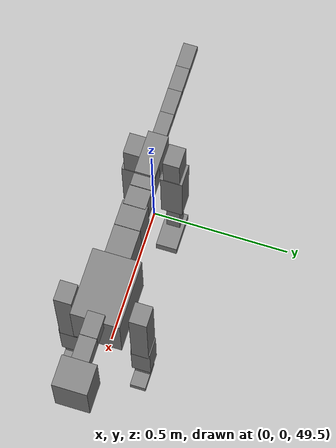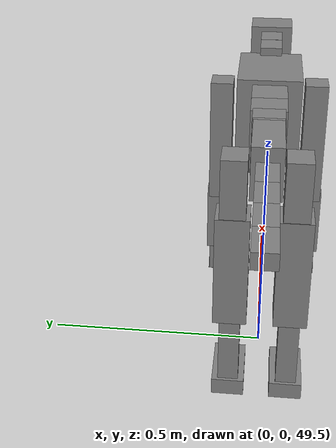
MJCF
<mujoco model="dog">

    <default>
        <joint armature="0.02" stiffness="1" damping="0.2" limited="true"/>
        <geom condim="3" friction="1 0.05 0.05" margin="0.01"/>
        <motor ctrllimited="true" ctrlrange="-1.0 1.0" forcelimited="true" gear="50"/>
    </default>

    <compiler inertiafromgeom="true" angle="radian"/>

    <option timestep="0.016" iterations="50" tolerance="1e-10" solver="Newton" jacobian="dense" cone="pyramidal"/>

    <size nconmax="20000" njmax="60000" nstack="5000000"/>
    <visual>
        <map force="0.1" zfar="30"/>
        <rgba haze="0.15 0.25 0.35 1"/>
        <quality shadowsize="2048"/>
        <global offwidth="800" offheight="800"/>
    </visual>

    <asset>
        <texture type="skybox" builtin="gradient" rgb1="0.3 0.5 0.7" rgb2="0 0 0" width="512" height="512"/>
        <texture name="texplane" type="2d" builtin="checker" rgb1=".2 .3 .4" rgb2=".1 0.15 0.2" width="512" height="512"
                 mark="cross" markrgb=".8 .8 .8"/>
        <texture name="texgeom" type="cube" builtin="flat" mark="cross" width="127" height="1278" rgb1="0.8 0.6 0.4"
                 rgb2="0.8 0.6 0.4" markrgb="1 1 1" random="0.01"/>

        <material name="matplane" reflectance="0.3" texture="texplane" texrepeat="1 1" texuniform="true"/>
        <material name="matgeom" texture="texgeom" texuniform="true" rgba="0.8 0.6 .4 1"/>
    </asset>

    <worldbody>
        <geom name="floor" pos="0 0 0" size="0 0 .25" type="plane" material="matplane" condim="3"/>

        <light directional="false" diffuse=".2 .2 .2" specular="0 0 0" pos="0 0 5" dir="0 0 -1" castshadow="false"/>
        <light mode="targetbodycom" target="torso" directional="false" diffuse=".8 .8 .8" specular="0.3 0.3 0.3"
               pos="0 0 4.0" dir="0 0 -1"/>

        <body name="root" pos="0 0 50">
            <freejoint name="root_1"/>
            <geom type="box" pos="0 0 -0.02" size="0.0774  0.0358  0.063" density="2030"/>

            <body name="spine1" pos="0.054 0 0">
                <joint name="spine1_y" axis="0 1 0" range="0 0.7" limited="true"/>
                <geom type="box" pos="0.02375 0 -0.03" size="0.04375  0.0375  0.05985" density="2030"/>

                <body name="spine2" pos="0.0612 0 0">
                    <joint name="spine2_y" axis="0 1 0" range="-0.15 0.15" limited="true"/>
                    <geom type="box" pos="0.03555  0  -0.04" size="0.04055  0.039  0.06615" density="2030"/>

                    <body name="spine3" pos="0.0730 0 0">
                        <joint name="spine3_y" axis="0 1 0" range="-0.15 0.15" limited="true"/>
                        <geom type="box" pos="0.03555  0  -0.057" size="0.04555  0.0445  0.081" density="2030"/>

                        <body name="spine4" pos="0.0780 0 0">
                            <joint name="spine4_y" axis="0 1 0" range="-0.15 0.15" limited="true"/>
                            <geom type="box" pos="0.05265  0  -0.07" size="0.05265  0.045  0.09135" density="2030"/>

                            <body name="torso" pos="0.1082 0 0">
                                <joint name="torso_y" axis="0 1 0" range="-0.15 0.15" limited="true"/>
                                <geom type="box" pos="0.11925  0  -0.085" size="0.11925  0.085  0.11745"
                                      density="2030"/>

                                <body name="neck1" pos="0.2160  0   0.0180">
                                    <joint name="neck1_y" axis="0 1 0" range="-1.2  -1" limited="true"/>
                                    <geom type="box" pos="0.0423  0  0" size="0.0423  0.03  0.036" density="2325"/>

                                    <body name="neck2" pos="0.0853  0  0">
                                        <joint name="neck2_y" axis="0 1 0" range="0.1  0" limited="true"/>
                                        <geom type="box" pos="0.0423  0  0" size="0.0423  0.03  0.036" density="2325"/>

                                        <body name="head" pos="0.0853  0  0">
                                            <joint name="head_y" axis="0 1 0" range="-0.3  -0.2" limited="true"/>
                                            <geom type="box" pos="0.0531  0  -0.055" size="0.0531  0.06  0.1044"
                                                  density="4030"/>

                                        </body>
                                    </body>
                                </body>

                                <body name="front_shoulder" pos="0.156  0   -0.0480">
                                    <joint name="front_shoulder_y" axis="0 1 0" range="-1 1.5" limited="true"/>
                                    <geom type="box" pos="0 0.13 -0.1483" size="0.0364  0.0311  0.1750" density="1158"/>
                                    <geom type="box" pos="0 -0.13 -0.1483" size="0.0364  0.0311  0.1750"
                                          density="1158"/>

                                    <body name="front_elbow" pos="0  0  -0.2967">
                                        <joint name="front_elbow_y" axis="0 1 0" range="-2 0" limited="true"/>
                                        <geom type="box" pos="0 0.13 -0.0985" size="0.0338  0.0346  0.0985"
                                              density="1081"/>
                                        <geom type="box" pos="0 -0.13 -0.0985" size="0.0338  0.0346  0.0985"
                                              density="1081"/>

                                        <body name="front_wrist" pos="0  0  -0.1970">
                                            <joint name="front_wrist_y" axis="0 1 0" range="-0.2 0" limited="true"/>
                                            <geom type="box" pos="0 0.13 -0.0348" size="0.0242  0.0269  0.0480"
                                                  density="1664"/>
                                            <geom type="box" pos="0 -0.13 -0.0348" size="0.0242  0.0269  0.0480"
                                                  density="1664"/>

                                            <body name="front_finger_end" pos="0  0  -0.0696">
                                                <joint name="front_finger_y" axis="0 1 0" range="-0.4 1"
                                                       limited="true"/>
                                                <geom type="box" pos="0.0285  0.13  0.0004"
                                                      size="0.0522  0.0285  0.0146" density="1515"/>
                                                <geom type="box" pos="0.0285  -0.13  0.0004"
                                                      size="0.0522  0.0285  0.0146" density="1515"/>

                                            </body>

                                        </body>
                                    </body>
                                </body>

                            </body>
                        </body>
                    </body>
                </body>
            </body>

            <body name="back_hip" pos="-0.03 0 -0.018">
                <joint name="back_hip_y" axis="0 1 0" range="-1.5 0.3" limited="true"/>
                <geom type="box" pos="0 0.07 -0.0673" size="0.0376  0.0295  0.0901" density="1154"/>
                <geom type="box" pos="0 -0.07 -0.0673" size="0.0376  0.0295  0.0901" density="1154"/>

                <body name="back_knee" pos="0  0  -0.1346">
                    <joint name="back_knee_y" axis="0 1 0" range="0 2.8" limited="true"/>
                    <geom type="box" pos="0 0.07 -0.1213" size="0.0399  0.0393  0.1368" density="1227"/>
                    <geom type="box" pos="0 -0.07 -0.1213" size="0.0399  0.0393  0.1368" density="1227"/>

                    <body name="back_ankle" pos="0  0  -0.2426">
                        <joint name="back_ankle_y" axis="0 1 0" range="-2.2 0" limited="true"/>
                        <geom type="box" pos="0 0.07 -0.1020" size="0.0247  0.0247  0.1133" density="1284"/>
                        <geom type="box" pos="0 -0.07 -0.1020" size="0.0247  0.0247  0.1133" density="1284"/>

                        <body name="back_toe_end" pos="0  0  -0.2040">
                            <joint name="back_toe_y" axis="0 1 0" range="-0.4 1" limited="true"/>
                            <geom type="box" pos="0.0389  0.07  -0.0057" size="0.0714  0.0389  0.0207" density="1515"/>
                            <geom type="box" pos="0.0389  -0.07  -0.0057" size="0.0714  0.0389  0.0207" density="1515"/>

                        </body>
                    </body>
                </body>
            </body>

            <body name="tail1" pos="-0.074 0 -0.006">
                <joint name="tail1_y" axis="0 1 0" range="-0.2 0.2" limited="true"/>
                <geom type="box" pos="-0.0536  0  0" size="0.045  0.025  0.0175" density="1587"/>

                <body name="tail2" pos="-0.09 0 0">
                    <joint name="tail2_y" axis="0 1 0" range="-0.2 0.2" limited="true"/>
                    <geom type="box" pos="-0.0536  0  0" size="0.045  0.025  0.0175" density="1587"/>

                    <body name="tail3" pos="-0.09 0 0">
                        <joint name="tail3_y" axis="0 1 0" range="-0.2 0.2" limited="true"/>
                        <geom type="box" pos="-0.0536  0  0" size="0.045  0.025  0.0175" density="1587"/>

                        <body name="tail4" pos="-0.09 0 0">
                            <joint name="tail4_y" axis="0 1 0" range="-0.2 0.2" limited="true"/>
                            <geom type="box" pos="-0.0536  0  0" size="0.045  0.025  0.0175" density="1587"/>

                        </body>
                    </body>
                </body>
            </body>
        </body>
    </worldbody>

    <actuator>
        <motor joint="spine1_y" forcerange="-150 150     "/>
        <motor joint="spine2_y" forcerange="-150 150     "/>
        <motor joint="spine3_y" forcerange="-150 150     "/>
        <motor joint="spine4_y" forcerange="-150 150     "/>
        <motor joint="torso_y" forcerange="-150 150     "/>
        <motor joint="neck1_y" forcerange="-100 100       "/>
        <motor joint="neck2_y" forcerange="-100 100       "/>
        <motor joint="head_y" forcerange="-150 150       "/>
        <motor joint="front_shoulder_y" forcerange="-128.68 178.93"/>
        <motor joint="front_elbow_y" forcerange="-185.75 165.57"/>
        <motor joint="front_wrist_y" forcerange="-100.24 115.28"/>
        <motor joint="front_finger_y" forcerange="-84.84 27.06"/>
        <motor joint="back_hip_y" forcerange="-284.22 308.64"/>
        <motor joint="back_knee_y" forcerange="-399.82 372.46"/>
        <motor joint="back_angle_y" forcerange="-215.26 80.38"/>
        <motor joint="back_toe_y" forcerange="-101.65 129.79"/>
        <motor joint="tail1_y" forcerange="-50 50     "/>
        <motor joint="tail2_y" forcerange="-50 50     "/>
        <motor joint="tail3_y" forcerange="-50 50     "/>
        <motor joint="tail4_y" forcerange="-50 50     "/>
    </actuator>
</mujoco>
